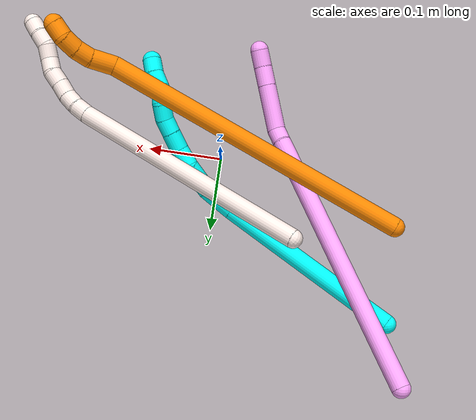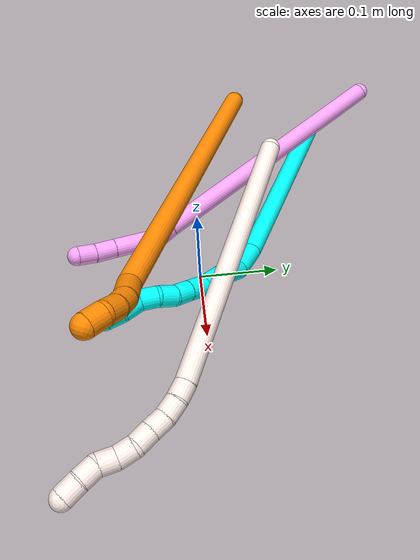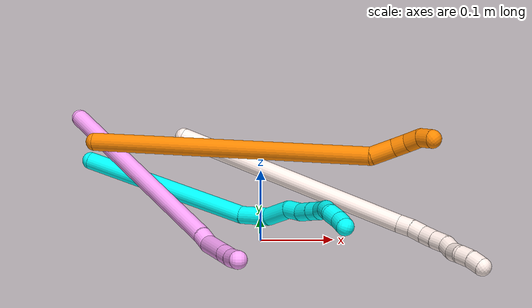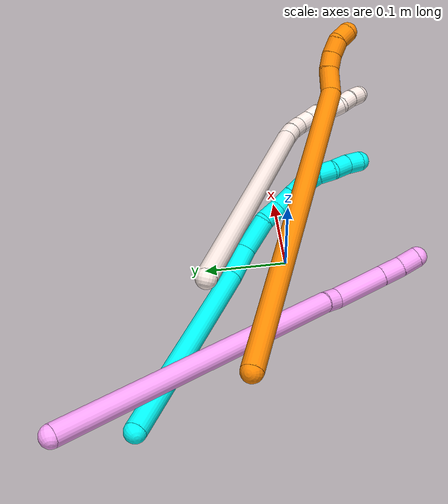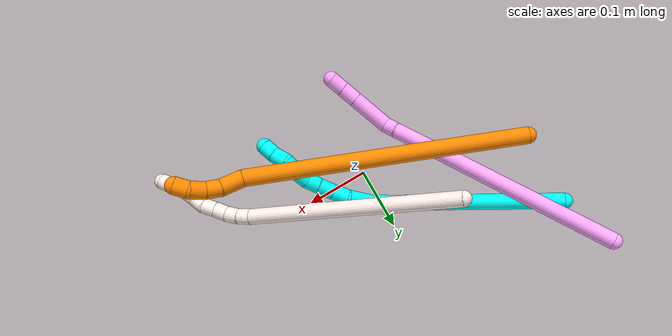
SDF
<sdf version="1.7">
 <world name="default">
  <model name="3">
   <static>0</static>
   <link name="3">
    <collision name="collision-cylinder-e_1_1_4">
     <pose>0.066369 -0.041484 0.101593 0.387674 0.543948 0.109382</pose>
     <geometry><cylinder><radius>0.0125</radius><length>0.256491</length></cylinder></geometry>
     <surface>
      <friction><ode><mu>1.16</mu><mu2>1.16</mu2><slip1>0</slip1><slip2>0</slip2></ode></friction>
      <contact><ode><kp>1e+06</kp><kd>1</kd><max_vel>0</max_vel><min_depth>0.001</min_depth></ode></contact>
     </surface>
    </collision>
    <visual name="visual-cylinder-e_1_1_4">
     <pose>0.066369 -0.041484 0.101593 0.387674 0.543948 0.109382</pose>
     <geometry><cylinder><radius>0.0125</radius><length>0.256491</length></cylinder></geometry>
     <material><ambient>0.003922 1 0.996078 1</ambient></material>
    </visual>
    <collision name="collision-cylinder-e_2_4_5">
     <pose>0.142325 -0.095514 0.218438 0.688311 0.451918 0.164419</pose>
     <geometry><cylinder><radius>0.0125</radius><length>0.043906</length></cylinder></geometry>
     <surface>
      <friction><ode><mu>1.16</mu><mu2>1.16</mu2><slip1>0</slip1><slip2>0</slip2></ode></friction>
      <contact><ode><kp>1e+06</kp><kd>1</kd><max_vel>0</max_vel><min_depth>0.001</min_depth></ode></contact>
     </surface>
    </collision>
    <visual name="visual-cylinder-e_2_4_5">
     <pose>0.142325 -0.095514 0.218438 0.688311 0.451918 0.164419</pose>
     <geometry><cylinder><radius>0.0125</radius><length>0.043906</length></cylinder></geometry>
     <material><ambient>0.003922 1 0.996078 1</ambient></material>
    </visual>
    <collision name="collision-cylinder-e_3_5_6">
     <pose>0.1606 -0.126097 0.241841 1.14638 0.413636 0.269228</pose>
     <geometry><cylinder><radius>0.0125</radius><length>0.043234</length></cylinder></geometry>
     <surface>
      <friction><ode><mu>1.16</mu><mu2>1.16</mu2><slip1>0</slip1><slip2>0</slip2></ode></friction>
      <contact><ode><kp>1e+06</kp><kd>1</kd><max_vel>0</max_vel><min_depth>0.001</min_depth></ode></contact>
     </surface>
    </collision>
    <visual name="visual-cylinder-e_3_5_6">
     <pose>0.1606 -0.126097 0.241841 1.14638 0.413636 0.269228</pose>
     <geometry><cylinder><radius>0.0125</radius><length>0.043234</length></cylinder></geometry>
     <material><ambient>0.003922 1 0.996078 1</ambient></material>
    </visual>
    <collision name="collision-cylinder-e_4_6_7">
     <pose>0.17804 -0.151474 0.255731 0.907151 0.754075 0.38137</pose>
     <geometry><cylinder><radius>0.0125</radius><length>0.025564</length></cylinder></geometry>
     <surface>
      <friction><ode><mu>1.16</mu><mu2>1.16</mu2><slip1>0</slip1><slip2>0</slip2></ode></friction>
      <contact><ode><kp>1e+06</kp><kd>1</kd><max_vel>0</max_vel><min_depth>0.001</min_depth></ode></contact>
     </surface>
    </collision>
    <visual name="visual-cylinder-e_4_6_7">
     <pose>0.17804 -0.151474 0.255731 0.907151 0.754075 0.38137</pose>
     <geometry><cylinder><radius>0.0125</radius><length>0.025564</length></cylinder></geometry>
     <material><ambient>0.003922 1 0.996078 1</ambient></material>
    </visual>
    <collision name="collision-cylinder-e_5_7_8">
     <pose>0.194458 -0.168204 0.265314 1.18227 0.647103 0.442776</pose>
     <geometry><cylinder><radius>0.0125</radius><length>0.025436</length></cylinder></geometry>
     <surface>
      <friction><ode><mu>1.16</mu><mu2>1.16</mu2><slip1>0</slip1><slip2>0</slip2></ode></friction>
      <contact><ode><kp>1e+06</kp><kd>1</kd><max_vel>0</max_vel><min_depth>0.001</min_depth></ode></contact>
     </surface>
    </collision>
    <visual name="visual-cylinder-e_5_7_8">
     <pose>0.194458 -0.168204 0.265314 1.18227 0.647103 0.442776</pose>
     <geometry><cylinder><radius>0.0125</radius><length>0.025436</length></cylinder></geometry>
     <material><ambient>0.003922 1 0.996078 1</ambient></material>
    </visual>
    <collision name="collision-cylinder-e_6_8_9">
     <pose>0.208394 -0.18484 0.272323 1.15897 0.670317 0.448219</pose>
     <geometry><cylinder><radius>0.0125</radius><length>0.020181</length></cylinder></geometry>
     <surface>
      <friction><ode><mu>1.16</mu><mu2>1.16</mu2><slip1>0</slip1><slip2>0</slip2></ode></friction>
      <contact><ode><kp>1e+06</kp><kd>1</kd><max_vel>0</max_vel><min_depth>0.001</min_depth></ode></contact>
     </surface>
    </collision>
    <visual name="visual-cylinder-e_6_8_9">
     <pose>0.208394 -0.18484 0.272323 1.15897 0.670317 0.448219</pose>
     <geometry><cylinder><radius>0.0125</radius><length>0.020181</length></cylinder></geometry>
     <material><ambient>0.003922 1 0.996078 1</ambient></material>
    </visual>
    <collision name="collision-cylinder-e_7_9_10">
     <pose>0.22167 -0.20009 0.275918 1.5171 0.718382 0.683733</pose>
     <geometry><cylinder><radius>0.0125</radius><length>0.021293</length></cylinder></geometry>
     <surface>
      <friction><ode><mu>1.16</mu><mu2>1.16</mu2><slip1>0</slip1><slip2>0</slip2></ode></friction>
      <contact><ode><kp>1e+06</kp><kd>1</kd><max_vel>0</max_vel><min_depth>0.001</min_depth></ode></contact>
     </surface>
    </collision>
    <visual name="visual-cylinder-e_7_9_10">
     <pose>0.22167 -0.20009 0.275918 1.5171 0.718382 0.683733</pose>
     <geometry><cylinder><radius>0.0125</radius><length>0.021293</length></cylinder></geometry>
     <material><ambient>0.003922 1 0.996078 1</ambient></material>
    </visual>
    <collision name="collision-cylinder-e_8_10_11">
     <pose>0.237927 -0.213284 0.276761 1.49148 1.05813 0.990318</pose>
     <geometry><cylinder><radius>0.0125</radius><length>0.021231</length></cylinder></geometry>
     <surface>
      <friction><ode><mu>1.16</mu><mu2>1.16</mu2><slip1>0</slip1><slip2>0</slip2></ode></friction>
      <contact><ode><kp>1e+06</kp><kd>1</kd><max_vel>0</max_vel><min_depth>0.001</min_depth></ode></contact>
     </surface>
    </collision>
    <visual name="visual-cylinder-e_8_10_11">
     <pose>0.237927 -0.213284 0.276761 1.49148 1.05813 0.990318</pose>
     <geometry><cylinder><radius>0.0125</radius><length>0.021231</length></cylinder></geometry>
     <material><ambient>0.003922 1 0.996078 1</ambient></material>
    </visual>
    <collision name="collision-cylinder-e_9_11_12">
     <pose>0.256774 -0.22234 0.281647 0.712598 1.01868 0.409885</pose>
     <geometry><cylinder><radius>0.0125</radius><length>0.022541</length></cylinder></geometry>
     <surface>
      <friction><ode><mu>1.16</mu><mu2>1.16</mu2><slip1>0</slip1><slip2>0</slip2></ode></friction>
      <contact><ode><kp>1e+06</kp><kd>1</kd><max_vel>0</max_vel><min_depth>0.001</min_depth></ode></contact>
     </surface>
    </collision>
    <visual name="visual-cylinder-e_9_11_12">
     <pose>0.256774 -0.22234 0.281647 0.712598 1.01868 0.409885</pose>
     <geometry><cylinder><radius>0.0125</radius><length>0.022541</length></cylinder></geometry>
     <material><ambient>0.003922 1 0.996078 1</ambient></material>
    </visual>
    <collision name="collision-cylinder-e_10_12_2">
     <pose>0.275628 -0.229491 0.288297 0.985538 1.16822 0.682164</pose>
     <geometry><cylinder><radius>0.0125</radius><length>0.020125</length></cylinder></geometry>
     <surface>
      <friction><ode><mu>1.16</mu><mu2>1.16</mu2><slip1>0</slip1><slip2>0</slip2></ode></friction>
      <contact><ode><kp>1e+06</kp><kd>1</kd><max_vel>0</max_vel><min_depth>0.001</min_depth></ode></contact>
     </surface>
    </collision>
    <visual name="visual-cylinder-e_10_12_2">
     <pose>0.275628 -0.229491 0.288297 0.985538 1.16822 0.682164</pose>
     <geometry><cylinder><radius>0.0125</radius><length>0.020125</length></cylinder></geometry>
     <material><ambient>0.003922 1 0.996078 1</ambient></material>
    </visual>
    <collision name="collision-sphere-2">
     <pose>0.284885 -0.232777 0.290475 0 -0 0</pose>
     <geometry><sphere><radius>0.0125</radius></sphere></geometry>
     <surface>
      <friction><ode><mu>1.16</mu><mu2>1.16</mu2><slip1>0</slip1><slip2>0</slip2></ode></friction>
      <contact><ode><kp>1e+06</kp><kd>1</kd><max_vel>0</max_vel><min_depth>0.001</min_depth></ode></contact>
     </surface>
    </collision>
    <visual name="visual-sphere-2">
     <pose>0.284885 -0.232777 0.290475 0 -0 0</pose>
     <geometry><sphere><radius>0.0125</radius></sphere></geometry>
     <material><ambient>0.003922 1 0.996078 1</ambient></material>
    </visual>
    <collision name="collision-sphere-12">
     <pose>0.26637 -0.226204 0.28612 0 -0 0</pose>
     <geometry><sphere><radius>0.0125</radius></sphere></geometry>
     <surface>
      <friction><ode><mu>1.16</mu><mu2>1.16</mu2><slip1>0</slip1><slip2>0</slip2></ode></friction>
      <contact><ode><kp>1e+06</kp><kd>1</kd><max_vel>0</max_vel><min_depth>0.001</min_depth></ode></contact>
     </surface>
    </collision>
    <visual name="visual-sphere-12">
     <pose>0.26637 -0.226204 0.28612 0 -0 0</pose>
     <geometry><sphere><radius>0.0125</radius></sphere></geometry>
     <material><ambient>0.003922 1 0.996078 1</ambient></material>
    </visual>
    <collision name="collision-sphere-11">
     <pose>0.247178 -0.218475 0.277174 0 -0 0</pose>
     <geometry><sphere><radius>0.0125</radius></sphere></geometry>
     <surface>
      <friction><ode><mu>1.16</mu><mu2>1.16</mu2><slip1>0</slip1><slip2>0</slip2></ode></friction>
      <contact><ode><kp>1e+06</kp><kd>1</kd><max_vel>0</max_vel><min_depth>0.001</min_depth></ode></contact>
     </surface>
    </collision>
    <visual name="visual-sphere-11">
     <pose>0.247178 -0.218475 0.277174 0 -0 0</pose>
     <geometry><sphere><radius>0.0125</radius></sphere></geometry>
     <material><ambient>0.003922 1 0.996078 1</ambient></material>
    </visual>
    <collision name="collision-sphere-10">
     <pose>0.228677 -0.208094 0.276349 0 -0 0</pose>
     <geometry><sphere><radius>0.0125</radius></sphere></geometry>
     <surface>
      <friction><ode><mu>1.16</mu><mu2>1.16</mu2><slip1>0</slip1><slip2>0</slip2></ode></friction>
      <contact><ode><kp>1e+06</kp><kd>1</kd><max_vel>0</max_vel><min_depth>0.001</min_depth></ode></contact>
     </surface>
    </collision>
    <visual name="visual-sphere-10">
     <pose>0.228677 -0.208094 0.276349 0 -0 0</pose>
     <geometry><sphere><radius>0.0125</radius></sphere></geometry>
     <material><ambient>0.003922 1 0.996078 1</ambient></material>
    </visual>
    <collision name="collision-sphere-9">
     <pose>0.214662 -0.192086 0.275488 0 -0 0</pose>
     <geometry><sphere><radius>0.0125</radius></sphere></geometry>
     <surface>
      <friction><ode><mu>1.16</mu><mu2>1.16</mu2><slip1>0</slip1><slip2>0</slip2></ode></friction>
      <contact><ode><kp>1e+06</kp><kd>1</kd><max_vel>0</max_vel><min_depth>0.001</min_depth></ode></contact>
     </surface>
    </collision>
    <visual name="visual-sphere-9">
     <pose>0.214662 -0.192086 0.275488 0 -0 0</pose>
     <geometry><sphere><radius>0.0125</radius></sphere></geometry>
     <material><ambient>0.003922 1 0.996078 1</ambient></material>
    </visual>
    <collision name="collision-sphere-4">
     <pose>0.132738 -0.082968 0.203185 0 -0 0</pose>
     <geometry><sphere><radius>0.0125</radius></sphere></geometry>
     <surface>
      <friction><ode><mu>1.16</mu><mu2>1.16</mu2><slip1>0</slip1><slip2>0</slip2></ode></friction>
      <contact><ode><kp>1e+06</kp><kd>1</kd><max_vel>0</max_vel><min_depth>0.001</min_depth></ode></contact>
     </surface>
    </collision>
    <visual name="visual-sphere-4">
     <pose>0.132738 -0.082968 0.203185 0 -0 0</pose>
     <geometry><sphere><radius>0.0125</radius></sphere></geometry>
     <material><ambient>0.003922 1 0.996078 1</ambient></material>
    </visual>
    <collision name="collision-sphere-1">
     <geometry><sphere><radius>0.0125</radius></sphere></geometry>
     <surface>
      <friction><ode><mu>1.16</mu><mu2>1.16</mu2><slip1>0</slip1><slip2>0</slip2></ode></friction>
      <contact><ode><kp>1e+06</kp><kd>1</kd><max_vel>0</max_vel><min_depth>0.001</min_depth></ode></contact>
     </surface>
    </collision>
    <visual name="visual-sphere-1">
     <geometry><sphere><radius>0.0125</radius></sphere></geometry>
     <material><ambient>0.003922 1 0.996078 1</ambient></material>
    </visual>
    <collision name="collision-sphere-8">
     <pose>0.202125 -0.177594 0.269158 0 -0 0</pose>
     <geometry><sphere><radius>0.0125</radius></sphere></geometry>
     <surface>
      <friction><ode><mu>1.16</mu><mu2>1.16</mu2><slip1>0</slip1><slip2>0</slip2></ode></friction>
      <contact><ode><kp>1e+06</kp><kd>1</kd><max_vel>0</max_vel><min_depth>0.001</min_depth></ode></contact>
     </surface>
    </collision>
    <visual name="visual-sphere-8">
     <pose>0.202125 -0.177594 0.269158 0 -0 0</pose>
     <geometry><sphere><radius>0.0125</radius></sphere></geometry>
     <material><ambient>0.003922 1 0.996078 1</ambient></material>
    </visual>
    <collision name="collision-sphere-5">
     <pose>0.151912 -0.108059 0.23369 0 -0 0</pose>
     <geometry><sphere><radius>0.0125</radius></sphere></geometry>
     <surface>
      <friction><ode><mu>1.16</mu><mu2>1.16</mu2><slip1>0</slip1><slip2>0</slip2></ode></friction>
      <contact><ode><kp>1e+06</kp><kd>1</kd><max_vel>0</max_vel><min_depth>0.001</min_depth></ode></contact>
     </surface>
    </collision>
    <visual name="visual-sphere-5">
     <pose>0.151912 -0.108059 0.23369 0 -0 0</pose>
     <geometry><sphere><radius>0.0125</radius></sphere></geometry>
     <material><ambient>0.003922 1 0.996078 1</ambient></material>
    </visual>
    <collision name="collision-sphere-6">
     <pose>0.169289 -0.144134 0.249992 0 -0 0</pose>
     <geometry><sphere><radius>0.0125</radius></sphere></geometry>
     <surface>
      <friction><ode><mu>1.16</mu><mu2>1.16</mu2><slip1>0</slip1><slip2>0</slip2></ode></friction>
      <contact><ode><kp>1e+06</kp><kd>1</kd><max_vel>0</max_vel><min_depth>0.001</min_depth></ode></contact>
     </surface>
    </collision>
    <visual name="visual-sphere-6">
     <pose>0.169289 -0.144134 0.249992 0 -0 0</pose>
     <geometry><sphere><radius>0.0125</radius></sphere></geometry>
     <material><ambient>0.003922 1 0.996078 1</ambient></material>
    </visual>
    <collision name="collision-sphere-7">
     <pose>0.186791 -0.158813 0.26147 0 -0 0</pose>
     <geometry><sphere><radius>0.0125</radius></sphere></geometry>
     <surface>
      <friction><ode><mu>1.16</mu><mu2>1.16</mu2><slip1>0</slip1><slip2>0</slip2></ode></friction>
      <contact><ode><kp>1e+06</kp><kd>1</kd><max_vel>0</max_vel><min_depth>0.001</min_depth></ode></contact>
     </surface>
    </collision>
    <visual name="visual-sphere-7">
     <pose>0.186791 -0.158813 0.26147 0 -0 0</pose>
     <geometry><sphere><radius>0.0125</radius></sphere></geometry>
     <material><ambient>0.003922 1 0.996078 1</ambient></material>
    </visual>
    <inertial>
     <pose>0.130049 -0.10117 0.177574 0 -0 0</pose>
     <mass>0.5</mass>
     <inertia>
      <ixx>0.001389</ixx>
      <ixy>0</ixy>
      <ixz>0</ixz>
      <iyy>0.001475</iyy>
      <iyz>0</iyz>
      <izz>-0.000249</izz>
     </inertia>
    </inertial>
   </link>
   <pose>-0.246399 0.193375 0.060031 -1.9241 0.405938 -1.5606</pose>
  </model>
  <model name="4">
   <static>0</static>
   <link name="4">
    <collision name="collision-cylinder-e_1_1_4">
     <pose>0.047265 -0.154917 0.084753 1.07019 0.261533 0.155607</pose>
     <geometry><cylinder><radius>0.0125</radius><length>0.365603</length></cylinder></geometry>
     <surface>
      <friction><ode><mu>1.16</mu><mu2>1.16</mu2><slip1>0</slip1><slip2>0</slip2></ode></friction>
      <contact><ode><kp>1e+06</kp><kd>1</kd><max_vel>0</max_vel><min_depth>0.001</min_depth></ode></contact>
     </surface>
    </collision>
    <visual name="visual-cylinder-e_1_1_4">
     <pose>0.047265 -0.154917 0.084753 1.07019 0.261533 0.155607</pose>
     <geometry><cylinder><radius>0.0125</radius><length>0.365603</length></cylinder></geometry>
     <material><ambient>1 0.65098 0.996078 1</ambient></material>
    </visual>
    <collision name="collision-cylinder-e_2_4_5">
     <pose>0.098498 -0.31806 0.173874 1.08259 0.402702 0.244205</pose>
     <geometry><cylinder><radius>0.0125</radius><length>0.020247</length></cylinder></geometry>
     <surface>
      <friction><ode><mu>1.16</mu><mu2>1.16</mu2><slip1>0</slip1><slip2>0</slip2></ode></friction>
      <contact><ode><kp>1e+06</kp><kd>1</kd><max_vel>0</max_vel><min_depth>0.001</min_depth></ode></contact>
     </surface>
    </collision>
    <visual name="visual-cylinder-e_2_4_5">
     <pose>0.098498 -0.31806 0.173874 1.08259 0.402702 0.244205</pose>
     <geometry><cylinder><radius>0.0125</radius><length>0.020247</length></cylinder></geometry>
     <material><ambient>1 0.65098 0.996078 1</ambient></material>
    </visual>
    <collision name="collision-cylinder-e_3_5_6">
     <pose>0.100536 -0.356801 0.187184 1.28575 -0.060626 -0.045417</pose>
     <geometry><cylinder><radius>0.0125</radius><length>0.063714</length></cylinder></geometry>
     <surface>
      <friction><ode><mu>1.16</mu><mu2>1.16</mu2><slip1>0</slip1><slip2>0</slip2></ode></friction>
      <contact><ode><kp>1e+06</kp><kd>1</kd><max_vel>0</max_vel><min_depth>0.001</min_depth></ode></contact>
     </surface>
    </collision>
    <visual name="visual-cylinder-e_3_5_6">
     <pose>0.100536 -0.356801 0.187184 1.28575 -0.060626 -0.045417</pose>
     <geometry><cylinder><radius>0.0125</radius><length>0.063714</length></cylinder></geometry>
     <material><ambient>1 0.65098 0.996078 1</ambient></material>
    </visual>
    <collision name="collision-cylinder-e_4_6_7">
     <pose>0.097899 -0.400067 0.19987 1.28524 -0.053106 -0.03976</pose>
     <geometry><cylinder><radius>0.0125</radius><length>0.026616</length></cylinder></geometry>
     <surface>
      <friction><ode><mu>1.16</mu><mu2>1.16</mu2><slip1>0</slip1><slip2>0</slip2></ode></friction>
      <contact><ode><kp>1e+06</kp><kd>1</kd><max_vel>0</max_vel><min_depth>0.001</min_depth></ode></contact>
     </surface>
    </collision>
    <visual name="visual-cylinder-e_4_6_7">
     <pose>0.097899 -0.400067 0.19987 1.28524 -0.053106 -0.03976</pose>
     <geometry><cylinder><radius>0.0125</radius><length>0.026616</length></cylinder></geometry>
     <material><ambient>1 0.65098 0.996078 1</ambient></material>
    </visual>
    <collision name="collision-cylinder-e_5_7_2">
     <pose>0.095111 -0.424063 0.206941 1.28303 -0.175706 -0.131385</pose>
     <geometry><cylinder><radius>0.0125</radius><length>0.02382</length></cylinder></geometry>
     <surface>
      <friction><ode><mu>1.16</mu><mu2>1.16</mu2><slip1>0</slip1><slip2>0</slip2></ode></friction>
      <contact><ode><kp>1e+06</kp><kd>1</kd><max_vel>0</max_vel><min_depth>0.001</min_depth></ode></contact>
     </surface>
    </collision>
    <visual name="visual-cylinder-e_5_7_2">
     <pose>0.095111 -0.424063 0.206941 1.28303 -0.175706 -0.131385</pose>
     <geometry><cylinder><radius>0.0125</radius><length>0.02382</length></cylinder></geometry>
     <material><ambient>1 0.65098 0.996078 1</ambient></material>
    </visual>
    <collision name="collision-sphere-2">
     <pose>0.093029 -0.435307 0.210269 0 -0 0</pose>
     <geometry><sphere><radius>0.0125</radius></sphere></geometry>
     <surface>
      <friction><ode><mu>1.16</mu><mu2>1.16</mu2><slip1>0</slip1><slip2>0</slip2></ode></friction>
      <contact><ode><kp>1e+06</kp><kd>1</kd><max_vel>0</max_vel><min_depth>0.001</min_depth></ode></contact>
     </surface>
    </collision>
    <visual name="visual-sphere-2">
     <pose>0.093029 -0.435307 0.210269 0 -0 0</pose>
     <geometry><sphere><radius>0.0125</radius></sphere></geometry>
     <material><ambient>1 0.65098 0.996078 1</ambient></material>
    </visual>
    <collision name="collision-sphere-7">
     <pose>0.097193 -0.412818 0.203613 0 -0 0</pose>
     <geometry><sphere><radius>0.0125</radius></sphere></geometry>
     <surface>
      <friction><ode><mu>1.16</mu><mu2>1.16</mu2><slip1>0</slip1><slip2>0</slip2></ode></friction>
      <contact><ode><kp>1e+06</kp><kd>1</kd><max_vel>0</max_vel><min_depth>0.001</min_depth></ode></contact>
     </surface>
    </collision>
    <visual name="visual-sphere-7">
     <pose>0.097193 -0.412818 0.203613 0 -0 0</pose>
     <geometry><sphere><radius>0.0125</radius></sphere></geometry>
     <material><ambient>1 0.65098 0.996078 1</ambient></material>
    </visual>
    <collision name="collision-sphere-6">
     <pose>0.098605 -0.387316 0.196126 0 -0 0</pose>
     <geometry><sphere><radius>0.0125</radius></sphere></geometry>
     <surface>
      <friction><ode><mu>1.16</mu><mu2>1.16</mu2><slip1>0</slip1><slip2>0</slip2></ode></friction>
      <contact><ode><kp>1e+06</kp><kd>1</kd><max_vel>0</max_vel><min_depth>0.001</min_depth></ode></contact>
     </surface>
    </collision>
    <visual name="visual-sphere-6">
     <pose>0.098605 -0.387316 0.196126 0 -0 0</pose>
     <geometry><sphere><radius>0.0125</radius></sphere></geometry>
     <material><ambient>1 0.65098 0.996078 1</ambient></material>
    </visual>
    <collision name="collision-sphere-5">
     <pose>0.102466 -0.326286 0.178243 0 -0 0</pose>
     <geometry><sphere><radius>0.0125</radius></sphere></geometry>
     <surface>
      <friction><ode><mu>1.16</mu><mu2>1.16</mu2><slip1>0</slip1><slip2>0</slip2></ode></friction>
      <contact><ode><kp>1e+06</kp><kd>1</kd><max_vel>0</max_vel><min_depth>0.001</min_depth></ode></contact>
     </surface>
    </collision>
    <visual name="visual-sphere-5">
     <pose>0.102466 -0.326286 0.178243 0 -0 0</pose>
     <geometry><sphere><radius>0.0125</radius></sphere></geometry>
     <material><ambient>1 0.65098 0.996078 1</ambient></material>
    </visual>
    <collision name="collision-sphere-1">
     <geometry><sphere><radius>0.0125</radius></sphere></geometry>
     <surface>
      <friction><ode><mu>1.16</mu><mu2>1.16</mu2><slip1>0</slip1><slip2>0</slip2></ode></friction>
      <contact><ode><kp>1e+06</kp><kd>1</kd><max_vel>0</max_vel><min_depth>0.001</min_depth></ode></contact>
     </surface>
    </collision>
    <visual name="visual-sphere-1">
     <geometry><sphere><radius>0.0125</radius></sphere></geometry>
     <material><ambient>1 0.65098 0.996078 1</ambient></material>
    </visual>
    <collision name="collision-sphere-4">
     <pose>0.094531 -0.309834 0.169506 0 -0 0</pose>
     <geometry><sphere><radius>0.0125</radius></sphere></geometry>
     <surface>
      <friction><ode><mu>1.16</mu><mu2>1.16</mu2><slip1>0</slip1><slip2>0</slip2></ode></friction>
      <contact><ode><kp>1e+06</kp><kd>1</kd><max_vel>0</max_vel><min_depth>0.001</min_depth></ode></contact>
     </surface>
    </collision>
    <visual name="visual-sphere-4">
     <pose>0.094531 -0.309834 0.169506 0 -0 0</pose>
     <geometry><sphere><radius>0.0125</radius></sphere></geometry>
     <material><ambient>1 0.65098 0.996078 1</ambient></material>
    </visual>
    <inertial>
     <pose>0.061103 -0.213121 0.113363 0 -0 0</pose>
     <mass>0.5</mass>
     <inertia>
      <ixx>0.004548</ixx>
      <ixy>0</ixy>
      <ixz>0</ixz>
      <iyy>0.002667</iyy>
      <iyz>0</iyz>
      <izz>0.002453</izz>
     </inertia>
    </inertial>
   </link>
   <pose>-0.266621 0.2704 0.104223 -2.23104 1.50576 -2.16613</pose>
  </model>
  <model name="11">
   <static>0</static>
   <link name="11">
    <collision name="collision-cylinder-e_1_1_4">
     <pose>0.120041 -0.057585 -0.102901 2.6314 0.794323 2.02913</pose>
     <geometry><cylinder><radius>0.0125</radius><length>0.336538</length></cylinder></geometry>
     <surface>
      <friction><ode><mu>1.16</mu><mu2>1.16</mu2><slip1>0</slip1><slip2>0</slip2></ode></friction>
      <contact><ode><kp>1e+06</kp><kd>1</kd><max_vel>0</max_vel><min_depth>0.001</min_depth></ode></contact>
     </surface>
    </collision>
    <visual name="visual-cylinder-e_1_1_4">
     <pose>0.120041 -0.057585 -0.102901 2.6314 0.794323 2.02913</pose>
     <geometry><cylinder><radius>0.0125</radius><length>0.336538</length></cylinder></geometry>
     <material><ambient>1 0.933333 0.909804 1</ambient></material>
    </visual>
    <collision name="collision-cylinder-e_2_4_5">
     <pose>0.247226 -0.11741 -0.212593 2.823 0.7848 2.40102</pose>
     <geometry><cylinder><radius>0.0125</radius><length>0.020215</length></cylinder></geometry>
     <surface>
      <friction><ode><mu>1.16</mu><mu2>1.16</mu2><slip1>0</slip1><slip2>0</slip2></ode></friction>
      <contact><ode><kp>1e+06</kp><kd>1</kd><max_vel>0</max_vel><min_depth>0.001</min_depth></ode></contact>
     </surface>
    </collision>
    <visual name="visual-cylinder-e_2_4_5">
     <pose>0.247226 -0.11741 -0.212593 2.823 0.7848 2.40102</pose>
     <geometry><cylinder><radius>0.0125</radius><length>0.020215</length></cylinder></geometry>
     <material><ambient>1 0.933333 0.909804 1</ambient></material>
    </visual>
    <collision name="collision-cylinder-e_3_5_6">
     <pose>0.262556 -0.120618 -0.225433 2.98281 0.928469 2.82646</pose>
     <geometry><cylinder><radius>0.0125</radius><length>0.020451</length></cylinder></geometry>
     <surface>
      <friction><ode><mu>1.16</mu><mu2>1.16</mu2><slip1>0</slip1><slip2>0</slip2></ode></friction>
      <contact><ode><kp>1e+06</kp><kd>1</kd><max_vel>0</max_vel><min_depth>0.001</min_depth></ode></contact>
     </surface>
    </collision>
    <visual name="visual-cylinder-e_3_5_6">
     <pose>0.262556 -0.120618 -0.225433 2.98281 0.928469 2.82646</pose>
     <geometry><cylinder><radius>0.0125</radius><length>0.020451</length></cylinder></geometry>
     <material><ambient>1 0.933333 0.909804 1</ambient></material>
    </visual>
    <collision name="collision-cylinder-e_4_6_7">
     <pose>0.278509 -0.120305 -0.237997 -2.94727 0.863337 -2.72456</pose>
     <geometry><cylinder><radius>0.0125</radius><length>0.020436</length></cylinder></geometry>
     <surface>
      <friction><ode><mu>1.16</mu><mu2>1.16</mu2><slip1>0</slip1><slip2>0</slip2></ode></friction>
      <contact><ode><kp>1e+06</kp><kd>1</kd><max_vel>0</max_vel><min_depth>0.001</min_depth></ode></contact>
     </surface>
    </collision>
    <visual name="visual-cylinder-e_4_6_7">
     <pose>0.278509 -0.120305 -0.237997 -2.94727 0.863337 -2.72456</pose>
     <geometry><cylinder><radius>0.0125</radius><length>0.020436</length></cylinder></geometry>
     <material><ambient>1 0.933333 0.909804 1</ambient></material>
    </visual>
    <collision name="collision-cylinder-e_5_7_8">
     <pose>0.293793 -0.118187 -0.251426 -3.02137 0.823687 -2.86776</pose>
     <geometry><cylinder><radius>0.0125</radius><length>0.020495</length></cylinder></geometry>
     <surface>
      <friction><ode><mu>1.16</mu><mu2>1.16</mu2><slip1>0</slip1><slip2>0</slip2></ode></friction>
      <contact><ode><kp>1e+06</kp><kd>1</kd><max_vel>0</max_vel><min_depth>0.001</min_depth></ode></contact>
     </surface>
    </collision>
    <visual name="visual-cylinder-e_5_7_8">
     <pose>0.293793 -0.118187 -0.251426 -3.02137 0.823687 -2.86776</pose>
     <geometry><cylinder><radius>0.0125</radius><length>0.020495</length></cylinder></geometry>
     <material><ambient>1 0.933333 0.909804 1</ambient></material>
    </visual>
    <collision name="collision-cylinder-e_6_8_9">
     <pose>0.309922 -0.114128 -0.262624 -2.49649 1.01382 -2.05801</pose>
     <geometry><cylinder><radius>0.0125</radius><length>0.020289</length></cylinder></geometry>
     <surface>
      <friction><ode><mu>1.16</mu><mu2>1.16</mu2><slip1>0</slip1><slip2>0</slip2></ode></friction>
      <contact><ode><kp>1e+06</kp><kd>1</kd><max_vel>0</max_vel><min_depth>0.001</min_depth></ode></contact>
     </surface>
    </collision>
    <visual name="visual-cylinder-e_6_8_9">
     <pose>0.309922 -0.114128 -0.262624 -2.49649 1.01382 -2.05801</pose>
     <geometry><cylinder><radius>0.0125</radius><length>0.020289</length></cylinder></geometry>
     <material><ambient>1 0.933333 0.909804 1</ambient></material>
    </visual>
    <collision name="collision-cylinder-e_7_9_10">
     <pose>0.324712 -0.105653 -0.273416 -2.46272 0.636411 -1.50136</pose>
     <geometry><cylinder><radius>0.0125</radius><length>0.020793</length></cylinder></geometry>
     <surface>
      <friction><ode><mu>1.16</mu><mu2>1.16</mu2><slip1>0</slip1><slip2>0</slip2></ode></friction>
      <contact><ode><kp>1e+06</kp><kd>1</kd><max_vel>0</max_vel><min_depth>0.001</min_depth></ode></contact>
     </surface>
    </collision>
    <visual name="visual-cylinder-e_7_9_10">
     <pose>0.324712 -0.105653 -0.273416 -2.46272 0.636411 -1.50136</pose>
     <geometry><cylinder><radius>0.0125</radius><length>0.020793</length></cylinder></geometry>
     <material><ambient>1 0.933333 0.909804 1</ambient></material>
    </visual>
    <collision name="collision-cylinder-e_8_10_11">
     <pose>0.338504 -0.099257 -0.286616 -2.97199 0.842458 -2.7666</pose>
     <geometry><cylinder><radius>0.0125</radius><length>0.020402</length></cylinder></geometry>
     <surface>
      <friction><ode><mu>1.16</mu><mu2>1.16</mu2><slip1>0</slip1><slip2>0</slip2></ode></friction>
      <contact><ode><kp>1e+06</kp><kd>1</kd><max_vel>0</max_vel><min_depth>0.001</min_depth></ode></contact>
     </surface>
    </collision>
    <visual name="visual-cylinder-e_8_10_11">
     <pose>0.338504 -0.099257 -0.286616 -2.97199 0.842458 -2.7666</pose>
     <geometry><cylinder><radius>0.0125</radius><length>0.020402</length></cylinder></geometry>
     <material><ambient>1 0.933333 0.909804 1</ambient></material>
    </visual>
    <collision name="collision-cylinder-e_9_11_2">
     <pose>0.354738 -0.097256 -0.298674 -2.98361 1.00846 -2.85665</pose>
     <geometry><cylinder><radius>0.0125</radius><length>0.020382</length></cylinder></geometry>
     <surface>
      <friction><ode><mu>1.16</mu><mu2>1.16</mu2><slip1>0</slip1><slip2>0</slip2></ode></friction>
      <contact><ode><kp>1e+06</kp><kd>1</kd><max_vel>0</max_vel><min_depth>0.001</min_depth></ode></contact>
     </surface>
    </collision>
    <visual name="visual-cylinder-e_9_11_2">
     <pose>0.354738 -0.097256 -0.298674 -2.98361 1.00846 -2.85665</pose>
     <geometry><cylinder><radius>0.0125</radius><length>0.020382</length></cylinder></geometry>
     <material><ambient>1 0.933333 0.909804 1</ambient></material>
    </visual>
    <collision name="collision-sphere-2">
     <pose>0.36336 -0.096401 -0.30404 0 -0 0</pose>
     <geometry><sphere><radius>0.0125</radius></sphere></geometry>
     <surface>
      <friction><ode><mu>1.16</mu><mu2>1.16</mu2><slip1>0</slip1><slip2>0</slip2></ode></friction>
      <contact><ode><kp>1e+06</kp><kd>1</kd><max_vel>0</max_vel><min_depth>0.001</min_depth></ode></contact>
     </surface>
    </collision>
    <visual name="visual-sphere-2">
     <pose>0.36336 -0.096401 -0.30404 0 -0 0</pose>
     <geometry><sphere><radius>0.0125</radius></sphere></geometry>
     <material><ambient>1 0.933333 0.909804 1</ambient></material>
    </visual>
    <collision name="collision-sphere-11">
     <pose>0.346117 -0.098111 -0.293309 0 -0 0</pose>
     <geometry><sphere><radius>0.0125</radius></sphere></geometry>
     <surface>
      <friction><ode><mu>1.16</mu><mu2>1.16</mu2><slip1>0</slip1><slip2>0</slip2></ode></friction>
      <contact><ode><kp>1e+06</kp><kd>1</kd><max_vel>0</max_vel><min_depth>0.001</min_depth></ode></contact>
     </surface>
    </collision>
    <visual name="visual-sphere-11">
     <pose>0.346117 -0.098111 -0.293309 0 -0 0</pose>
     <geometry><sphere><radius>0.0125</radius></sphere></geometry>
     <material><ambient>1 0.933333 0.909804 1</ambient></material>
    </visual>
    <collision name="collision-sphere-10">
     <pose>0.330891 -0.100403 -0.279923 0 -0 0</pose>
     <geometry><sphere><radius>0.0125</radius></sphere></geometry>
     <surface>
      <friction><ode><mu>1.16</mu><mu2>1.16</mu2><slip1>0</slip1><slip2>0</slip2></ode></friction>
      <contact><ode><kp>1e+06</kp><kd>1</kd><max_vel>0</max_vel><min_depth>0.001</min_depth></ode></contact>
     </surface>
    </collision>
    <visual name="visual-sphere-10">
     <pose>0.330891 -0.100403 -0.279923 0 -0 0</pose>
     <geometry><sphere><radius>0.0125</radius></sphere></geometry>
     <material><ambient>1 0.933333 0.909804 1</ambient></material>
    </visual>
    <collision name="collision-sphere-9">
     <pose>0.318533 -0.110903 -0.266909 0 -0 0</pose>
     <geometry><sphere><radius>0.0125</radius></sphere></geometry>
     <surface>
      <friction><ode><mu>1.16</mu><mu2>1.16</mu2><slip1>0</slip1><slip2>0</slip2></ode></friction>
      <contact><ode><kp>1e+06</kp><kd>1</kd><max_vel>0</max_vel><min_depth>0.001</min_depth></ode></contact>
     </surface>
    </collision>
    <visual name="visual-sphere-9">
     <pose>0.318533 -0.110903 -0.266909 0 -0 0</pose>
     <geometry><sphere><radius>0.0125</radius></sphere></geometry>
     <material><ambient>1 0.933333 0.909804 1</ambient></material>
    </visual>
    <collision name="collision-sphere-4">
     <pose>0.240083 -0.11517 -0.205801 0 -0 0</pose>
     <geometry><sphere><radius>0.0125</radius></sphere></geometry>
     <surface>
      <friction><ode><mu>1.16</mu><mu2>1.16</mu2><slip1>0</slip1><slip2>0</slip2></ode></friction>
      <contact><ode><kp>1e+06</kp><kd>1</kd><max_vel>0</max_vel><min_depth>0.001</min_depth></ode></contact>
     </surface>
    </collision>
    <visual name="visual-sphere-4">
     <pose>0.240083 -0.11517 -0.205801 0 -0 0</pose>
     <geometry><sphere><radius>0.0125</radius></sphere></geometry>
     <material><ambient>1 0.933333 0.909804 1</ambient></material>
    </visual>
    <collision name="collision-sphere-1">
     <geometry><sphere><radius>0.0125</radius></sphere></geometry>
     <surface>
      <friction><ode><mu>1.16</mu><mu2>1.16</mu2><slip1>0</slip1><slip2>0</slip2></ode></friction>
      <contact><ode><kp>1e+06</kp><kd>1</kd><max_vel>0</max_vel><min_depth>0.001</min_depth></ode></contact>
     </surface>
    </collision>
    <visual name="visual-sphere-1">
     <geometry><sphere><radius>0.0125</radius></sphere></geometry>
     <material><ambient>1 0.933333 0.909804 1</ambient></material>
    </visual>
    <collision name="collision-sphere-8">
     <pose>0.301311 -0.117352 -0.258339 0 -0 0</pose>
     <geometry><sphere><radius>0.0125</radius></sphere></geometry>
     <surface>
      <friction><ode><mu>1.16</mu><mu2>1.16</mu2><slip1>0</slip1><slip2>0</slip2></ode></friction>
      <contact><ode><kp>1e+06</kp><kd>1</kd><max_vel>0</max_vel><min_depth>0.001</min_depth></ode></contact>
     </surface>
    </collision>
    <visual name="visual-sphere-8">
     <pose>0.301311 -0.117352 -0.258339 0 -0 0</pose>
     <geometry><sphere><radius>0.0125</radius></sphere></geometry>
     <material><ambient>1 0.933333 0.909804 1</ambient></material>
    </visual>
    <collision name="collision-sphere-5">
     <pose>0.254368 -0.11965 -0.219384 0 -0 0</pose>
     <geometry><sphere><radius>0.0125</radius></sphere></geometry>
     <surface>
      <friction><ode><mu>1.16</mu><mu2>1.16</mu2><slip1>0</slip1><slip2>0</slip2></ode></friction>
      <contact><ode><kp>1e+06</kp><kd>1</kd><max_vel>0</max_vel><min_depth>0.001</min_depth></ode></contact>
     </surface>
    </collision>
    <visual name="visual-sphere-5">
     <pose>0.254368 -0.11965 -0.219384 0 -0 0</pose>
     <geometry><sphere><radius>0.0125</radius></sphere></geometry>
     <material><ambient>1 0.933333 0.909804 1</ambient></material>
    </visual>
    <collision name="collision-sphere-6">
     <pose>0.270744 -0.121587 -0.231481 0 -0 0</pose>
     <geometry><sphere><radius>0.0125</radius></sphere></geometry>
     <surface>
      <friction><ode><mu>1.16</mu><mu2>1.16</mu2><slip1>0</slip1><slip2>0</slip2></ode></friction>
      <contact><ode><kp>1e+06</kp><kd>1</kd><max_vel>0</max_vel><min_depth>0.001</min_depth></ode></contact>
     </surface>
    </collision>
    <visual name="visual-sphere-6">
     <pose>0.270744 -0.121587 -0.231481 0 -0 0</pose>
     <geometry><sphere><radius>0.0125</radius></sphere></geometry>
     <material><ambient>1 0.933333 0.909804 1</ambient></material>
    </visual>
    <collision name="collision-sphere-7">
     <pose>0.286275 -0.119022 -0.244513 0 -0 0</pose>
     <geometry><sphere><radius>0.0125</radius></sphere></geometry>
     <surface>
      <friction><ode><mu>1.16</mu><mu2>1.16</mu2><slip1>0</slip1><slip2>0</slip2></ode></friction>
      <contact><ode><kp>1e+06</kp><kd>1</kd><max_vel>0</max_vel><min_depth>0.001</min_depth></ode></contact>
     </surface>
    </collision>
    <visual name="visual-sphere-7">
     <pose>0.286275 -0.119022 -0.244513 0 -0 0</pose>
     <geometry><sphere><radius>0.0125</radius></sphere></geometry>
     <material><ambient>1 0.933333 0.909804 1</ambient></material>
    </visual>
    <inertial>
     <pose>0.179309 -0.07524 -0.153006 0 -0 0</pose>
     <mass>0.5</mass>
     <inertia>
      <ixx>0.001036</ixx>
      <ixy>0</ixy>
      <ixz>0</ixz>
      <iyy>0.004233</iyy>
      <iyz>0</iyz>
      <izz>-0.001218</izz>
     </inertia>
    </inertial>
   </link>
   <pose>-0.107118 0.105639 0.119753 2.59057 0.77907 -1.11492</pose>
  </model>
  <model name="19">
   <static>0</static>
   <link name="19">
    <collision name="collision-cylinder-e_1_1_4">
     <pose>0.141298 -0.04427 -0.13849 2.8322 0.771113 2.40793</pose>
     <geometry><cylinder><radius>0.0125</radius><length>0.405484</length></cylinder></geometry>
     <surface>
      <friction><ode><mu>1.16</mu><mu2>1.16</mu2><slip1>0</slip1><slip2>0</slip2></ode></friction>
      <contact><ode><kp>1e+06</kp><kd>1</kd><max_vel>0</max_vel><min_depth>0.001</min_depth></ode></contact>
     </surface>
    </collision>
    <visual name="visual-cylinder-e_1_1_4">
     <pose>0.141298 -0.04427 -0.13849 2.8322 0.771113 2.40793</pose>
     <geometry><cylinder><radius>0.0125</radius><length>0.405484</length></cylinder></geometry>
     <material><ambient>0.996078 0.537255 0 1</ambient></material>
    </visual>
    <collision name="collision-cylinder-e_2_4_5">
     <pose>0.297868 -0.089852 -0.282654 2.9143 1.20651 2.81322</pose>
     <geometry><cylinder><radius>0.0125</radius><length>0.032691</length></cylinder></geometry>
     <surface>
      <friction><ode><mu>1.16</mu><mu2>1.16</mu2><slip1>0</slip1><slip2>0</slip2></ode></friction>
      <contact><ode><kp>1e+06</kp><kd>1</kd><max_vel>0</max_vel><min_depth>0.001</min_depth></ode></contact>
     </surface>
    </collision>
    <visual name="visual-cylinder-e_2_4_5">
     <pose>0.297868 -0.089852 -0.282654 2.9143 1.20651 2.81322</pose>
     <geometry><cylinder><radius>0.0125</radius><length>0.032691</length></cylinder></geometry>
     <material><ambient>0.996078 0.537255 0 1</ambient></material>
    </visual>
    <collision name="collision-cylinder-e_3_5_6">
     <pose>0.322075 -0.094483 -0.292022 2.40965 1.06348 1.98676</pose>
     <geometry><cylinder><radius>0.0125</radius><length>0.020444</length></cylinder></geometry>
     <surface>
      <friction><ode><mu>1.16</mu><mu2>1.16</mu2><slip1>0</slip1><slip2>0</slip2></ode></friction>
      <contact><ode><kp>1e+06</kp><kd>1</kd><max_vel>0</max_vel><min_depth>0.001</min_depth></ode></contact>
     </surface>
    </collision>
    <visual name="visual-cylinder-e_3_5_6">
     <pose>0.322075 -0.094483 -0.292022 2.40965 1.06348 1.98676</pose>
     <geometry><cylinder><radius>0.0125</radius><length>0.020444</length></cylinder></geometry>
     <material><ambient>0.996078 0.537255 0 1</ambient></material>
    </visual>
    <collision name="collision-cylinder-e_4_6_7">
     <pose>0.339413 -0.103204 -0.299379 2.16674 0.910435 1.49123</pose>
     <geometry><cylinder><radius>0.0125</radius><length>0.021281</length></cylinder></geometry>
     <surface>
      <friction><ode><mu>1.16</mu><mu2>1.16</mu2><slip1>0</slip1><slip2>0</slip2></ode></friction>
      <contact><ode><kp>1e+06</kp><kd>1</kd><max_vel>0</max_vel><min_depth>0.001</min_depth></ode></contact>
     </surface>
    </collision>
    <visual name="visual-cylinder-e_4_6_7">
     <pose>0.339413 -0.103204 -0.299379 2.16674 0.910435 1.49123</pose>
     <geometry><cylinder><radius>0.0125</radius><length>0.021281</length></cylinder></geometry>
     <material><ambient>0.996078 0.537255 0 1</ambient></material>
    </visual>
    <collision name="collision-cylinder-e_5_7_2">
     <pose>0.352728 -0.114734 -0.309315 2.36779 0.510536 1.13932</pose>
     <geometry><cylinder><radius>0.0125</radius><length>0.0201</length></cylinder></geometry>
     <surface>
      <friction><ode><mu>1.16</mu><mu2>1.16</mu2><slip1>0</slip1><slip2>0</slip2></ode></friction>
      <contact><ode><kp>1e+06</kp><kd>1</kd><max_vel>0</max_vel><min_depth>0.001</min_depth></ode></contact>
     </surface>
    </collision>
    <visual name="visual-cylinder-e_5_7_2">
     <pose>0.352728 -0.114734 -0.309315 2.36779 0.510536 1.13932</pose>
     <geometry><cylinder><radius>0.0125</radius><length>0.0201</length></cylinder></geometry>
     <material><ambient>0.996078 0.537255 0 1</ambient></material>
    </visual>
    <collision name="collision-sphere-2">
     <pose>0.357639 -0.120862 -0.315586 0 -0 0</pose>
     <geometry><sphere><radius>0.0125</radius></sphere></geometry>
     <surface>
      <friction><ode><mu>1.16</mu><mu2>1.16</mu2><slip1>0</slip1><slip2>0</slip2></ode></friction>
      <contact><ode><kp>1e+06</kp><kd>1</kd><max_vel>0</max_vel><min_depth>0.001</min_depth></ode></contact>
     </surface>
    </collision>
    <visual name="visual-sphere-2">
     <pose>0.357639 -0.120862 -0.315586 0 -0 0</pose>
     <geometry><sphere><radius>0.0125</radius></sphere></geometry>
     <material><ambient>0.996078 0.537255 0 1</ambient></material>
    </visual>
    <collision name="collision-sphere-7">
     <pose>0.347817 -0.108606 -0.303043 0 -0 0</pose>
     <geometry><sphere><radius>0.0125</radius></sphere></geometry>
     <surface>
      <friction><ode><mu>1.16</mu><mu2>1.16</mu2><slip1>0</slip1><slip2>0</slip2></ode></friction>
      <contact><ode><kp>1e+06</kp><kd>1</kd><max_vel>0</max_vel><min_depth>0.001</min_depth></ode></contact>
     </surface>
    </collision>
    <visual name="visual-sphere-7">
     <pose>0.347817 -0.108606 -0.303043 0 -0 0</pose>
     <geometry><sphere><radius>0.0125</radius></sphere></geometry>
     <material><ambient>0.996078 0.537255 0 1</ambient></material>
    </visual>
    <collision name="collision-sphere-6">
     <pose>0.33101 -0.097802 -0.295716 0 -0 0</pose>
     <geometry><sphere><radius>0.0125</radius></sphere></geometry>
     <surface>
      <friction><ode><mu>1.16</mu><mu2>1.16</mu2><slip1>0</slip1><slip2>0</slip2></ode></friction>
      <contact><ode><kp>1e+06</kp><kd>1</kd><max_vel>0</max_vel><min_depth>0.001</min_depth></ode></contact>
     </surface>
    </collision>
    <visual name="visual-sphere-6">
     <pose>0.33101 -0.097802 -0.295716 0 -0 0</pose>
     <geometry><sphere><radius>0.0125</radius></sphere></geometry>
     <material><ambient>0.996078 0.537255 0 1</ambient></material>
    </visual>
    <collision name="collision-sphere-5">
     <pose>0.313141 -0.091164 -0.288328 0 -0 0</pose>
     <geometry><sphere><radius>0.0125</radius></sphere></geometry>
     <surface>
      <friction><ode><mu>1.16</mu><mu2>1.16</mu2><slip1>0</slip1><slip2>0</slip2></ode></friction>
      <contact><ode><kp>1e+06</kp><kd>1</kd><max_vel>0</max_vel><min_depth>0.001</min_depth></ode></contact>
     </surface>
    </collision>
    <visual name="visual-sphere-5">
     <pose>0.313141 -0.091164 -0.288328 0 -0 0</pose>
     <geometry><sphere><radius>0.0125</radius></sphere></geometry>
     <material><ambient>0.996078 0.537255 0 1</ambient></material>
    </visual>
    <collision name="collision-sphere-1">
     <geometry><sphere><radius>0.0125</radius></sphere></geometry>
     <surface>
      <friction><ode><mu>1.16</mu><mu2>1.16</mu2><slip1>0</slip1><slip2>0</slip2></ode></friction>
      <contact><ode><kp>1e+06</kp><kd>1</kd><max_vel>0</max_vel><min_depth>0.001</min_depth></ode></contact>
     </surface>
    </collision>
    <visual name="visual-sphere-1">
     <geometry><sphere><radius>0.0125</radius></sphere></geometry>
     <material><ambient>0.996078 0.537255 0 1</ambient></material>
    </visual>
    <collision name="collision-sphere-4">
     <pose>0.282595 -0.08854 -0.27698 0 -0 0</pose>
     <geometry><sphere><radius>0.0125</radius></sphere></geometry>
     <surface>
      <friction><ode><mu>1.16</mu><mu2>1.16</mu2><slip1>0</slip1><slip2>0</slip2></ode></friction>
      <contact><ode><kp>1e+06</kp><kd>1</kd><max_vel>0</max_vel><min_depth>0.001</min_depth></ode></contact>
     </surface>
    </collision>
    <visual name="visual-sphere-4">
     <pose>0.282595 -0.08854 -0.27698 0 -0 0</pose>
     <geometry><sphere><radius>0.0125</radius></sphere></geometry>
     <material><ambient>0.996078 0.537255 0 1</ambient></material>
    </visual>
    <inertial>
     <pose>0.175858 -0.054644 -0.167908 0 -0 0</pose>
     <mass>0.5</mass>
     <inertia>
      <ixx>-0.000262</ixx>
      <ixy>0</ixy>
      <ixz>0</ixz>
      <iyy>0.007409</iyy>
      <iyz>0</iyz>
      <izz>-0.002696</izz>
     </inertia>
    </inertial>
   </link>
   <pose>-0.23122 0.073257 0.122261 -0.52889 -0.660744 0.186728</pose>
  </model>
 </world>
</sdf>
